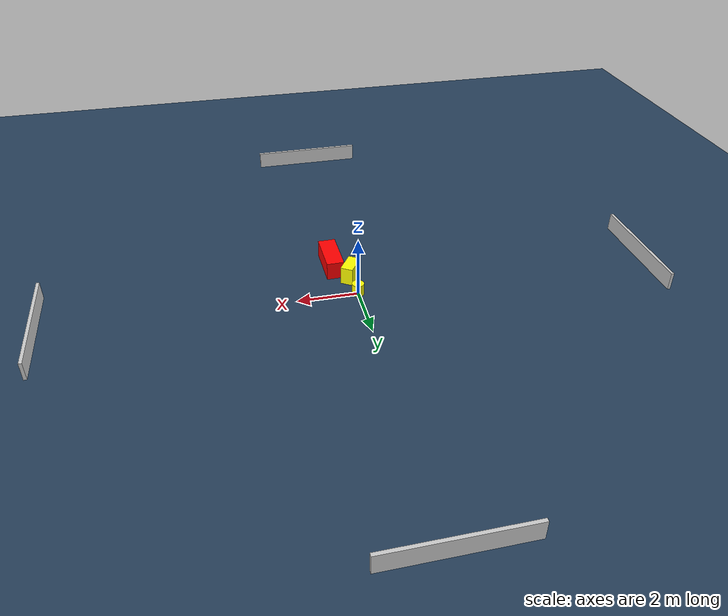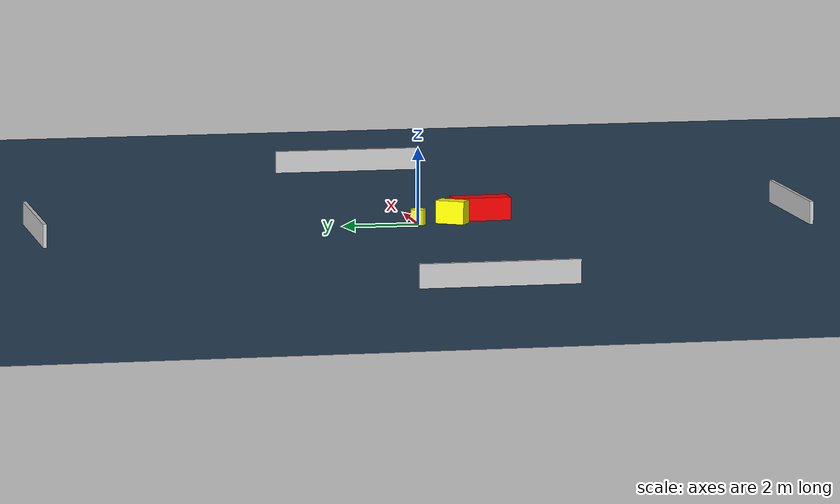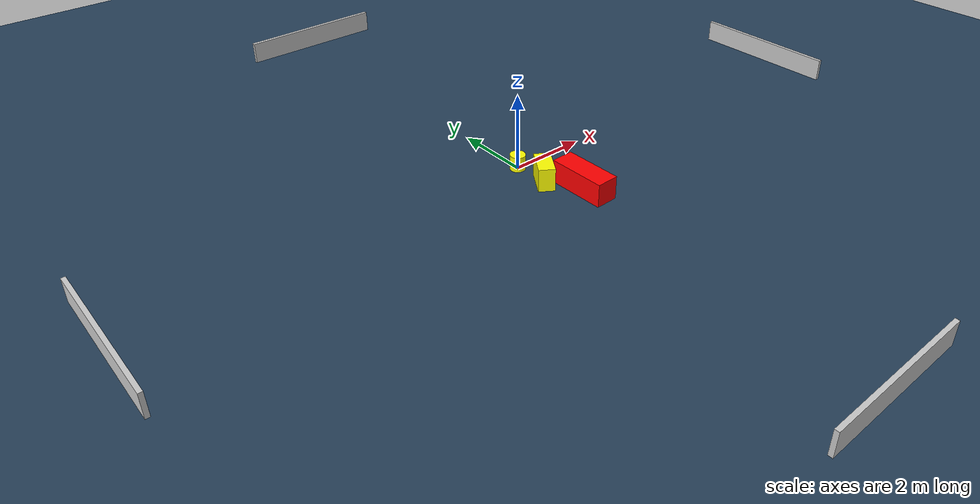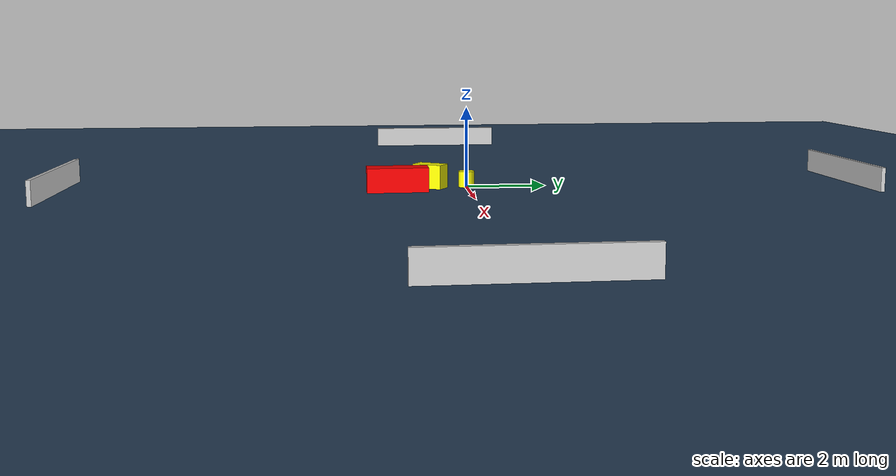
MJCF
<?xml version="1.0" ?>
<mujoco model="generated_environment">
  <option timestep="0.01" integrator="RK4" cone="elliptic"/>
  <default>
    <geom density="1"/>
  </default>
  <asset>
    <texture builtin="gradient" height="3072" name="skybox" rgb1="0.3 0.5 0.7" rgb2="0 0 0" type="skybox" width="512"/>
    <texture builtin="checker" height="300" name="groundplane" rgb1="0.2 0.3 0.4" rgb2="0.1 0.2 0.3" type="2d" width="300"/>
    <material name="groundplane" reflectance="0.2" texrepeat="5 5" texture="groundplane"/>
  </asset>
  <worldbody>
    <light dir="0 0 -1" directional="true" pos="0 0 1.5"/>
    <geom condim="3" friction="0.5 0.005 0.001" material="groundplane" name="floor" pos="0 0 0" size="0 0 0.05" type="plane"/>
    <body name="walls">
      <geom name="wall_1" condim="4" pos="-10.0 0.0 0.3" rgba="0.800000011920929 0.800000011920929 0.800000011920929 1.0" size="0.05 2.0 0.3" type="box"/>
      <geom name="wall_2" condim="4" pos="10.0 0.0 0.3" rgba="0.800000011920929 0.800000011920929 0.800000011920929 1.0" size="0.05 2.0 0.3" type="box"/>
      <geom name="wall_3" condim="4" pos="0.0 -10.0 0.3" rgba="0.800000011920929 0.800000011920929 0.800000011920929 1.0" size="2.0 0.05 0.3" type="box"/>
      <geom name="wall_4" condim="4" pos="0.0 10.0 0.3" rgba="0.800000011920929 0.800000011920929 0.800000011920929 1.0" size="2.0 0.05 0.3" type="box"/>
    </body>
    <body name="robot">
      <joint name="joint_x" type="slide" pos="0 0 0" axis="1 0 0"/>
      <joint name="joint_y" type="slide" pos="0 0 0" axis="0 1 0"/>
      <geom name="robot" type="cylinder" pos="0.0 0.0 0.2" size="0.2 0.2 0.0" mass="5.0" friction="1.0 0.005 0.0001" condim="4" rgba="1.0 1.0 0.0 1.0"/>
    </body>
    <body name="obstacle_1_movable">
      <geom name="obstacle_1_movable" condim="4" pos="0.04572849482670328 -0.9180467872520287 0.3" euler="0 0 57.055458908989166" friction="0.0 0.005 0.001" rgba="1.0 1.0 0.0 1.0" size="0.3856869664190782 0.2054731517297003 0.3" type="box" mass="0.1"/>
      <joint type="free"/>
    </body>
    <body name="obstacle_2_static">
      <geom name="obstacle_2_static" condim="4" pos="0.5484153223881686 -1.7625329059330346 0.3" euler="0 0 90.9629376411414" friction="0.0 0.005 0.001" rgba="1.0 0.0 0.0 1.0" size="0.7517880855196755 0.2909533613680898 0.3" type="box"/>
    </body>
  </worldbody>
  <actuator>
    <motor name="actuator_x" joint="joint_x" gear="1" ctrlrange="-1 1"/>
    <motor name="actuator_y" joint="joint_y" gear="1" ctrlrange="-1 1"/>
  </actuator>
</mujoco>
